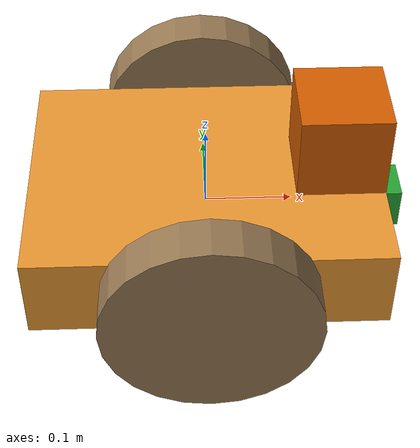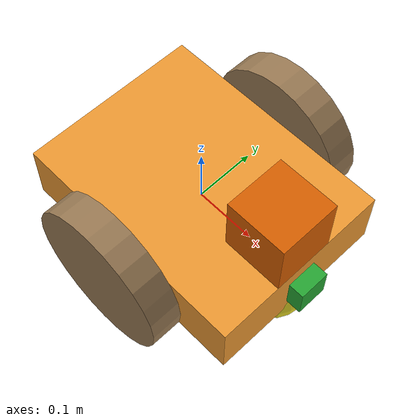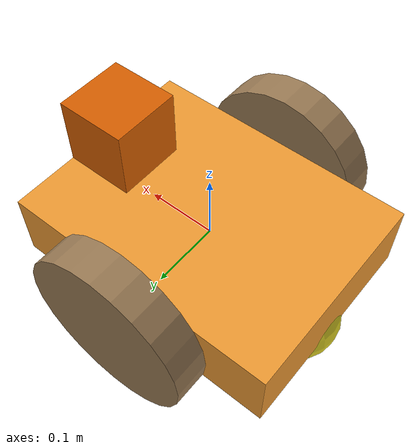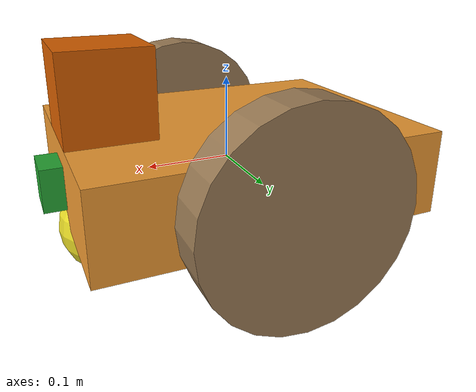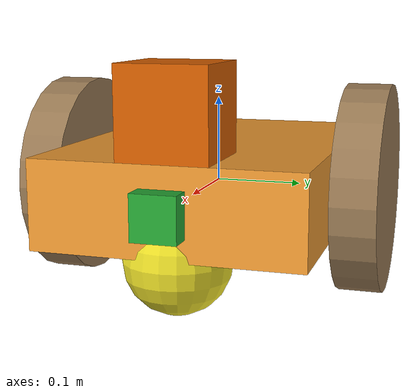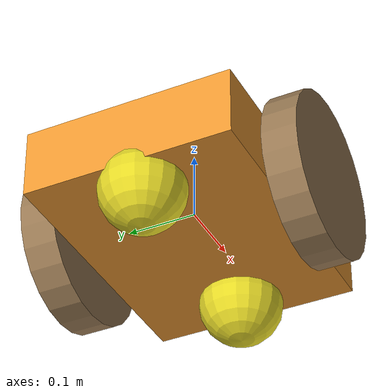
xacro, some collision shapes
<robot name="my_robot" xmlns:xacro="http://www.ros.org/wiki/xacro">
  <xacro:include filename="$(find my_robot)/urdf/my_robot.gazebo" />

  <!-- Define materials -->
  <xacro:macro name="material_orange">
    <material name="orange">
      <color rgba="0.929 0.6 0.196 1"/>
    </material>
  </xacro:macro>

  <xacro:macro name="material_brown">
    <material name="brown">
      <color rgba="0.596 0.474 0.325 1"/>
    </material>
  </xacro:macro>

  <!-- Use macros for materials -->
  <xacro:material_orange/>
  <xacro:material_brown/>

  <link name="robot_footprint"></link>

  <joint name="robot_footprint_joint" type="fixed">
    <origin xyz="0 0 0" rpy="0 0 0" />
    <parent link="robot_footprint"/>
    <child link="chassis" />
  </joint>

  <link name='chassis'>
    <pose>0 0 0.1 0 0 0</pose>

    <inertial>
      <mass value="10.0"/>
      <origin xyz="0.0 0 0" rpy=" 0 0 0"/>
      <inertia
          ixx="0.1" ixy="0" ixz="0"
          iyy="0.1" iyz="0"
          izz="0.1"
      />
    </inertial>

    <collision name='collision'>
      <origin xyz="0 0 0" rpy=" 0 0 0"/>
      <geometry>
        <box size=".4 .3 .1"/>
      </geometry>
    </collision>

    <visual name='chassis_visual'>
      <origin xyz="0 0 0" rpy=" 0 0 0"/>
      <geometry>
        <box size=".4 .3 .1"/>
      </geometry>
      <material name="orange"/>
    </visual>

    <collision name='back_caster_collision'>
      <origin xyz="-0.15 0 -0.06" rpy=" 0 0 0"/>
      <geometry>
        <sphere radius="0.0599"/>
      </geometry>
    </collision>

    <visual name='back_caster_visual'>
      <origin xyz="-0.15 0 -0.06" rpy=" 0 0 0"/>
      <geometry>
        <sphere radius="0.06"/>
      </geometry>
    </visual>

    <collision name='front_caster_collision'>
      <origin xyz="0.15 0 -0.06" rpy=" 0 0 0"/>
      <geometry>
        <sphere radius="0.0599"/>
      </geometry>
    </collision>

    <visual name='front_caster_visual'>
      <origin xyz="0.15 0 -0.06" rpy=" 0 0 0"/>
      <geometry>
        <sphere radius="0.06"/>
      </geometry>
    </visual>

  </link>

  <gazebo reference="chassis">
    <material>Gazebo/Yellow</material>
  </gazebo>

  <!-- Left Wheel -->
  <link name="left_wheel">

    <inertial>
      <mass value="5.0" />
      <origin rpy="0 1.5707 1.5707" xyz="0 0 0" />
      <inertia ixx="0.1" ixy="0" ixz="0" iyy="0.1" iyz="0" izz="0.1" />
    </inertial>

    <collision name="left_wheel_collision">
      <origin rpy="0 1.5707 1.5707" xyz="0 0 0" />
      <geometry>
        <cylinder radius="0.12" length="0.05" />
      </geometry>
    </collision>

    <visual name="left_wheel_visual">
      <origin rpy="0 1.5707 1.5707" xyz="0 0 0" />
      <geometry>
        <cylinder radius="0.12" length="0.05" />
      </geometry>
      <material name="brown"/>
    </visual>

  </link>

  <gazebo reference="left_wheel">
    <material>Gazebo/Red</material>
  </gazebo>

  <joint name="left_wheel_hinge" type="continuous">
    <origin rpy="0 0 0" xyz="0 0.18 0" />
    <parent link="chassis" />
    <child link="left_wheel" />
    <axis xyz="0 1 0" />
    <limit effort="10000" velocity="1000"/>
    <dynamics damping="1.0" friction="1.0"/>
  </joint>

  <!-- Right Wheel -->
  <link name="right_wheel">

    <inertial>
      <mass value="5.0" />
      <origin rpy="0 1.5707 1.5707" xyz="0 0 0" />
      <inertia ixx="0.1" ixy="0" ixz="0" iyy="0.1" iyz="0" izz="0.1" />
    </inertial>

    <collision name="right_wheel_collision">
      <origin rpy="0 1.5707 1.5707" xyz="0 0 0" />
      <geometry>
        <cylinder radius="0.12" length="0.05" />
      </geometry>
    </collision>

    <visual name="right_wheel_visual">
      <origin rpy="0 1.5707 1.5707" xyz="0 0 0" />
      <geometry>
        <cylinder radius="0.12" length="0.05" />
      </geometry>
      <material name="brown"/>
    </visual>

  </link>

  <gazebo reference="right_wheel">
    <material>Gazebo/Red</material>
  </gazebo>

  <joint name="right_wheel_hinge" type="continuous">
    <origin rpy="0 0 0" xyz="0 -0.18 0" />
    <parent link="chassis" />
    <child link="right_wheel" />
    <axis xyz="0 1 0" />
    <limit effort="10000" velocity="1000"/>
    <dynamics damping="1.0" friction="1.0"/>
  </joint>

  <!-- Camera -->
  <link name="camera">
    <inertial>
      <mass value="0.1" />
      <origin rpy="0 0 0" xyz="0 0 0" />
      <inertia ixx="1e-6" ixy="0" ixz="0" iyy="1e-6" iyz="0" izz="1e-6" />
    </inertial>
    <collision name="camera_collision">
      <origin rpy="0 0 0" xyz="0 0 0" />
      <geometry>
        <box size=".05 .05 .05"/>
      </geometry>
    </collision>
    <visual name="camera_visual">
      <origin rpy="0 0 0" xyz="0 0 0" />
      <geometry>
        <box size=".05 .05 .05"/>
      </geometry>
    </visual>
  </link>

  <gazebo reference="camera">
    <material>Gazebo/Green</material>
  </gazebo>

  <joint name="camera_joint" type="fixed">
    <origin rpy="0 0 0" xyz="0.2 0 0" />
    <parent link="chassis" />
    <child link="camera" />
    <axis xyz="0 1 0" />
  </joint>

  <!-- Lidar -->
  <link name="hokuyo">
    <inertial>
      <mass value="1e-5" />
      <origin rpy="0 0 0" xyz="0 0 0" />
      <inertia ixx="1e-6" ixy="0" ixz="0" iyy="1e-6" iyz="0" izz="1e-6" />
    </inertial>
    <collision name="hokuyo_collision">
      <origin rpy="0 0 0" xyz="0 0 0" />
      <geometry>
        <box size=".1 .1 .1"/>
      </geometry>
    </collision>
    <visual name="hokuyo_visual">
      <origin rpy="0 0 0" xyz="0 0 0" />
      <geometry>
        <mesh filename="package://my_robot/meshes/hokuyo.dae" scale="1 1 1"/>
      </geometry>
    </visual>
  </link>

  <joint name="hokoyu_joint" type="fixed">
    <origin rpy="0 0 0" xyz="0.15 0 0.1" />
    <parent link="chassis" />
    <child link="hokuyo" />
    <axis xyz="0 1 0" />
  </joint>

  <!-- Optical camera -->
  <joint name="camera_optical_joint" type="fixed">
    <origin xyz="0 0 0" rpy="0 0 -1.5707"/>
    <parent link="camera"/>
    <child link="camera_link_optical"/>
  </joint>

  <link name="camera_link_optical">
  </link>

</robot>
